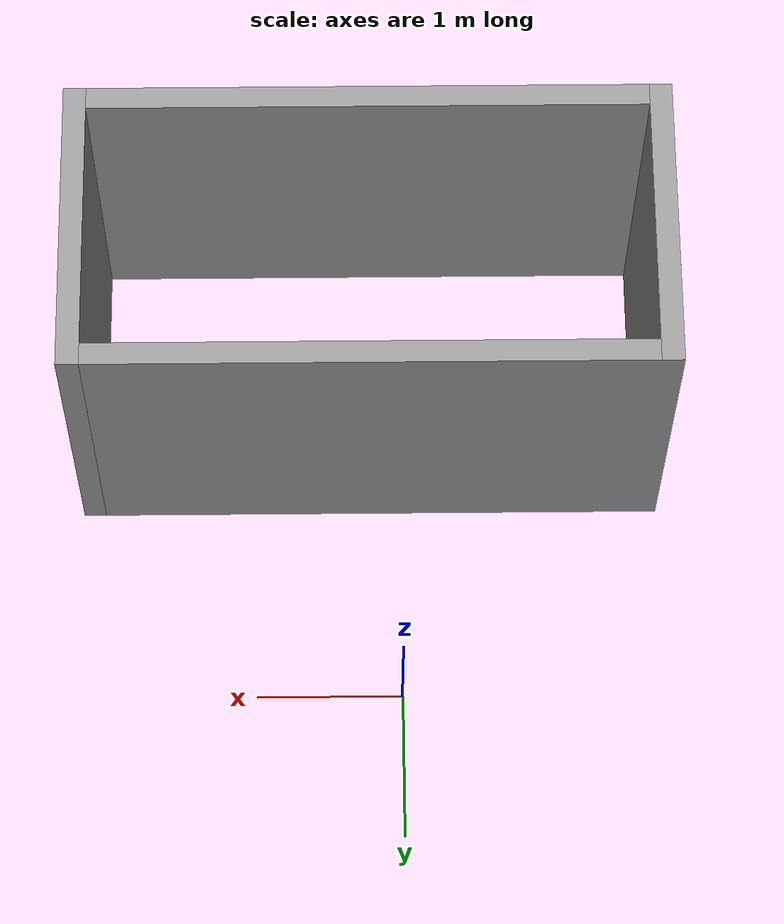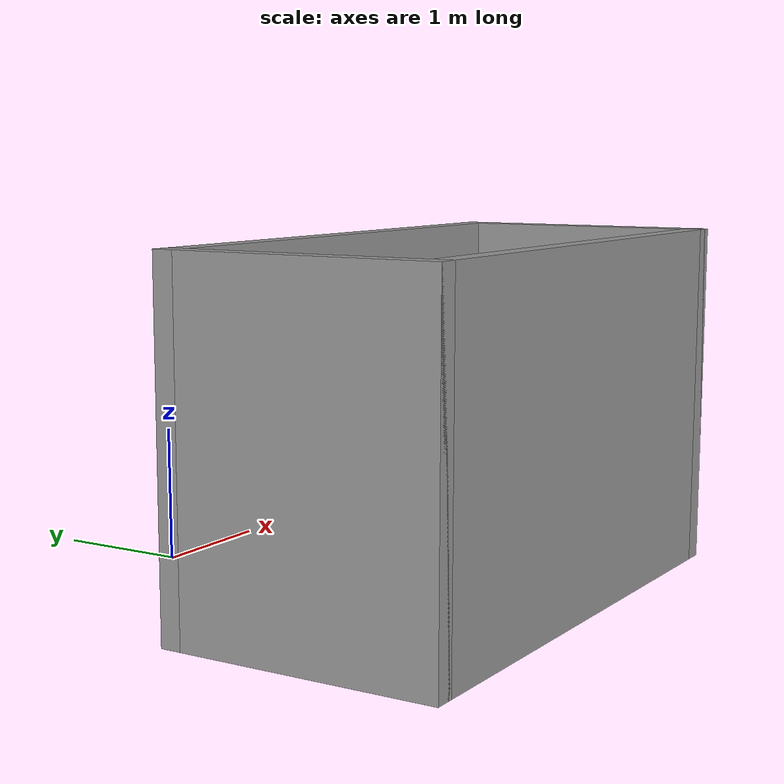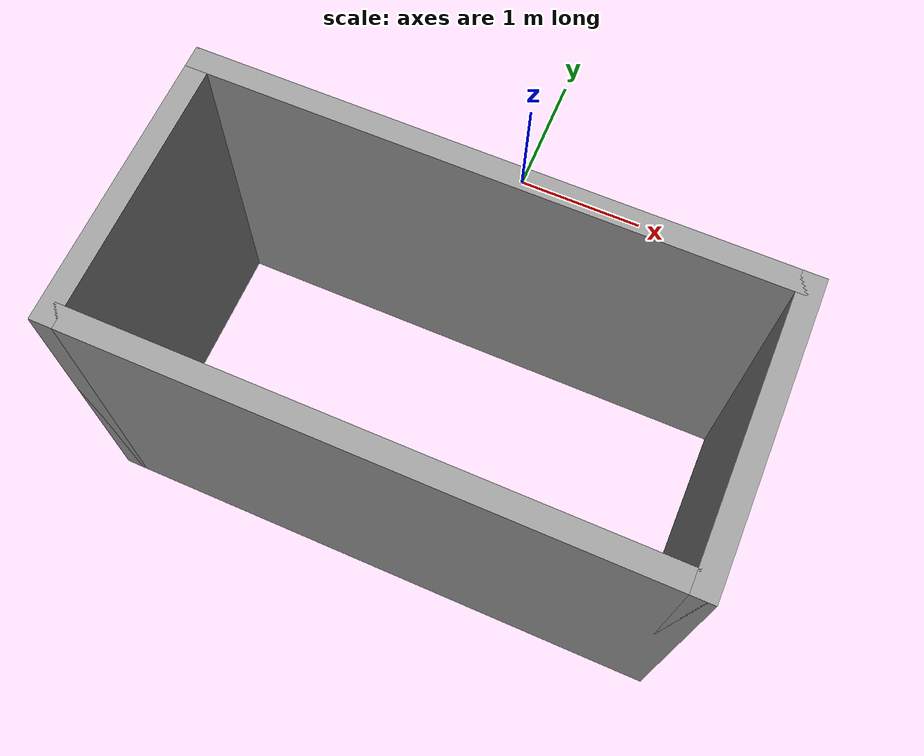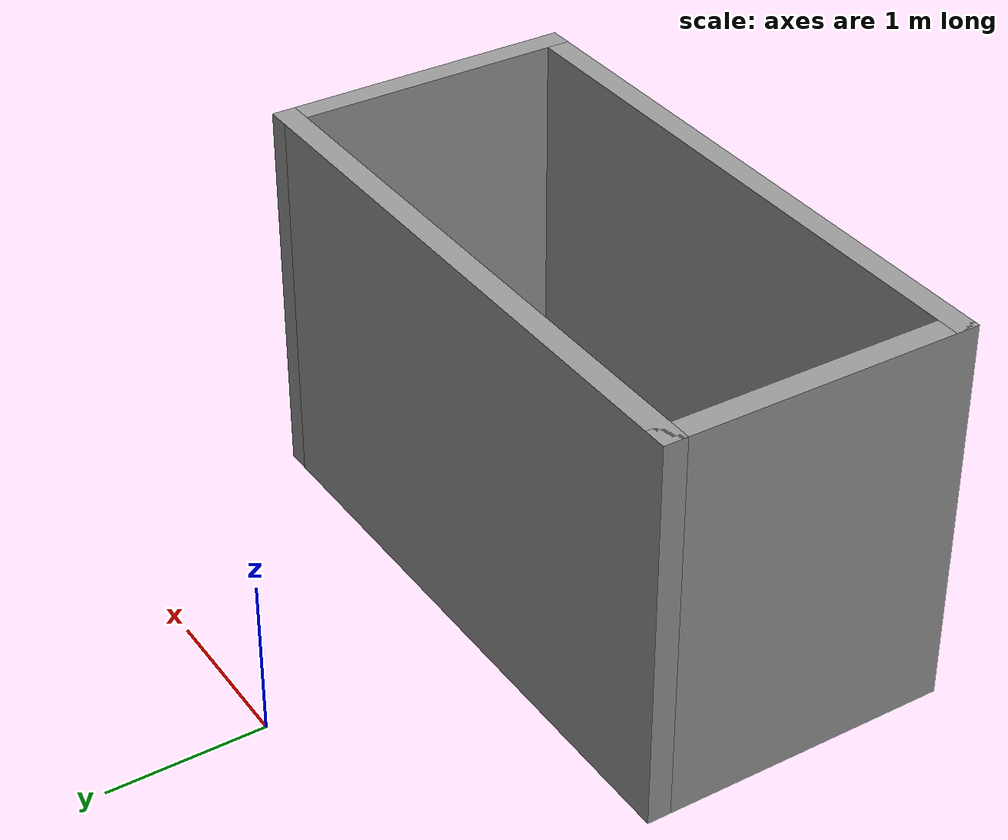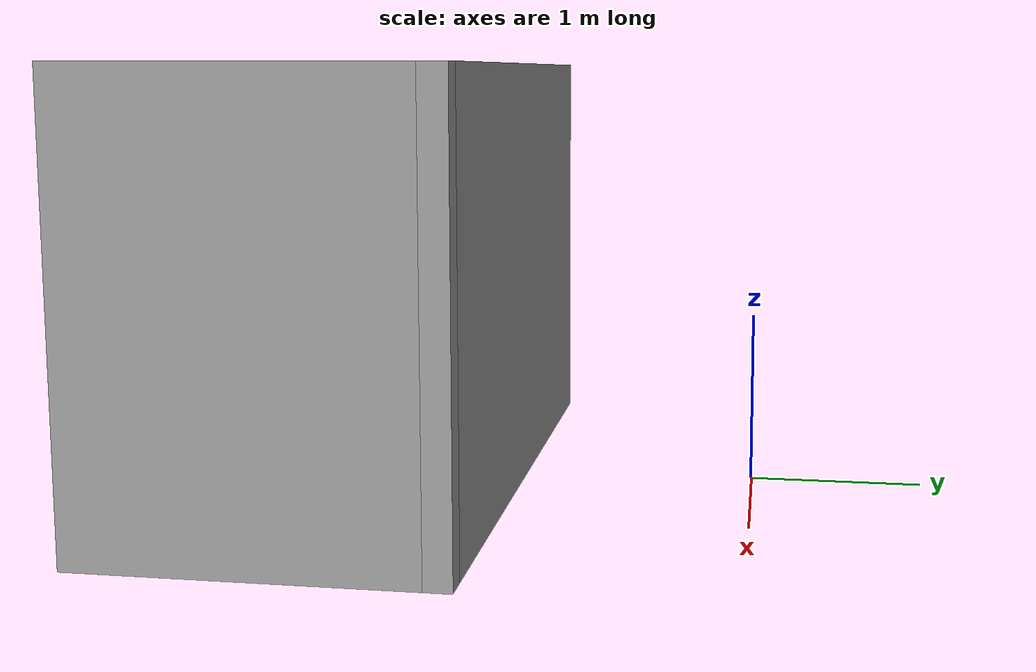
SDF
<?xml version='1.0'?>
<sdf version='1.6'>
  <model name='Map3'>
    <pose frame=''>0.215 -2.365 0 0 -0 0</pose>
    <link name='Wall_0'>
      <collision name='Wall_0_Collision'>
        <geometry>
          <box>
            <size>2 0.15 2.5</size>
          </box>
        </geometry>
        <pose frame=''>0 0 1.25 0 -0 0</pose>
      </collision>
      <visual name='Wall_0_Visual'>
        <pose frame=''>0 0 1.25 0 -0 0</pose>
        <geometry>
          <box>
            <size>2 0.15 2.5</size>
          </box>
        </geometry>
        <material>
          <script>
            <uri>file://media/materials/scripts/gazebo.material</uri>
            <name>Gazebo/Grey</name>
          </script>
          <ambient>1 1 1 1</ambient>
        </material>
      </visual>
      <pose frame=''>-1.925 0 0 0 0 -1.5708</pose>
    </link>
    <link name='Wall_1'>
      <collision name='Wall_1_Collision'>
        <geometry>
          <box>
            <size>4 0.15 2.5</size>
          </box>
        </geometry>
        <pose frame=''>0 0 1.25 0 -0 0</pose>
      </collision>
      <visual name='Wall_1_Visual'>
        <pose frame=''>0 0 1.25 0 -0 0</pose>
        <geometry>
          <box>
            <size>4 0.15 2.5</size>
          </box>
        </geometry>
        <material>
          <script>
            <uri>file://media/materials/scripts/gazebo.material</uri>
            <name>Gazebo/Grey</name>
          </script>
          <ambient>1 1 1 1</ambient>
        </material>
      </visual>
      <pose frame=''>0 -0.925 0 0 -0 0</pose>
    </link>
    <link name='Wall_2'>
      <collision name='Wall_2_Collision'>
        <geometry>
          <box>
            <size>2 0.15 2.5</size>
          </box>
        </geometry>
        <pose frame=''>0 0 1.25 0 -0 0</pose>
      </collision>
      <visual name='Wall_2_Visual'>
        <pose frame=''>0 0 1.25 0 -0 0</pose>
        <geometry>
          <box>
            <size>2 0.15 2.5</size>
          </box>
        </geometry>
        <material>
          <script>
            <uri>file://media/materials/scripts/gazebo.material</uri>
            <name>Gazebo/Grey</name>
          </script>
          <ambient>1 1 1 1</ambient>
        </material>
      </visual>
      <pose frame=''>1.925 0 0 0 -0 1.5708</pose>
    </link>
    <link name='Wall_3'>
      <collision name='Wall_3_Collision'>
        <geometry>
          <box>
            <size>4 0.15 2.5</size>
          </box>
        </geometry>
        <pose frame=''>0 0 1.25 0 -0 0</pose>
      </collision>
      <visual name='Wall_3_Visual'>
        <pose frame=''>0 0 1.25 0 -0 0</pose>
        <geometry>
          <box>
            <size>4 0.15 2.5</size>
          </box>
        </geometry>
        <material>
          <script>
            <uri>file://media/materials/scripts/gazebo.material</uri>
            <name>Gazebo/Grey</name>
          </script>
          <ambient>1 1 1 1</ambient>
        </material>
      </visual>
      <pose frame=''>0 0.925 0 0 -0 3.14159</pose>
    </link>
    <static>1</static>
  </model>
</sdf>
